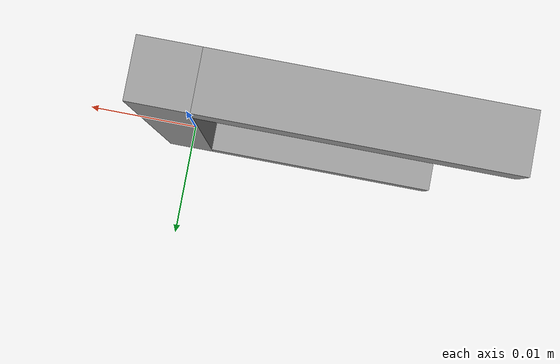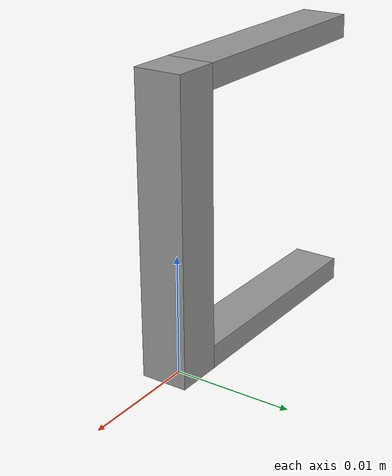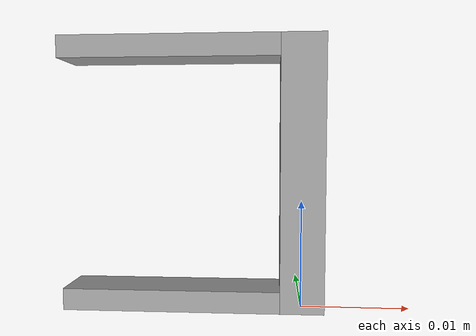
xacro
<?xml version="1.0"?>

<robot xmlns:xacro="http://www.ros.org/wiki/xacro" name="hand">

    <xacro:macro name="gazebo_red_link_color_block" params="link_name">
    <gazebo reference="${link_name}">
    <visual>
      <material>
	    <ambient>1.0 0.0 0.0 1.0</ambient>
	    <diffuse>0.56666695 0.56666695 0.56666695 1.0</diffuse>
	    <specular>0.6000003 0.6000003 0.6000003 1.0</specular>
      </material>
    </visual>
    </gazebo>
    </xacro:macro>

    <!-- EE -->
    <xacro:property name="base_EE_1" value="0.004" />
    <xacro:property name="length_EE_1" value="0.025" />
    <xacro:property name="length_EE_2" value="0.020" />
    <xacro:property name="mass_EE1" value="0.020" />
    <xacro:property name="mass_EE21" value="0.010" />
    <xacro:property name="mass_EE22" value="0.010" />

    <!--EE_part_1-->
    <link name="EE_part_1">
        <xacro:box_inertial_block mass="${mass_EE1}" x="${base_EE_1}" y="${base_EE_1}" z="${length_EE_1}"/>
        <visual>
            <origin xyz="0.0 0.0 ${length_EE_1/2.0}" rpy="0.0 0.0 0.0"/>
            <geometry>
                <box size="${base_EE_1} ${base_EE_1} ${length_EE_1}"/>
            </geometry>
            <material name="Grey"/>
        </visual>

        <collision>
            <origin xyz="0.0 0.0 ${length_EE_1/2.0}" rpy="0.0 0.0 0.0"/>
            <geometry>
                <box size="${base_EE_1} ${base_EE_1} ${length_EE_1}"/>
            </geometry>
        </collision>
    </link>

    <joint name="EE_joint_21" type="fixed">
        <origin xyz="${-base_EE_1/2} 0.0 ${0.0+base_EE_1/4}" rpy="0.0 ${-M_PI/2.0} 0.0"/>
        <parent link="EE_part_1"/>
        <child link="EE_part_21"/>
    </joint>

    <gazebo reference="EE_joint_21">
        <disableFixedJointLumping>true</disableFixedJointLumping>
        <preserveFixedJoint>true</preserveFixedJoint>
    </gazebo>

    <joint name="EE_joint_22" type="fixed">
        <origin xyz="${-base_EE_1/2} 0.0 ${length_EE_1-base_EE_1/4}" rpy="0.0 ${-M_PI/2.0} 0.0"/>
        <parent link="EE_part_1"/>
        <child link="EE_part_22"/>
    </joint>

    <gazebo reference="EE_joint_22">
        <disableFixedJointLumping>true</disableFixedJointLumping>
        <preserveFixedJoint>true</preserveFixedJoint>
    </gazebo>

    <!--EE_part_2-->
    <link name="EE_part_21">
        <xacro:box_inertial_block mass="${mass_EE21}" x="${base_EE_1/2}" y="${base_EE_1}" z="${length_EE_2}"/>
        <visual>
            <origin xyz="0.0 0.0 ${length_EE_2/2.0}" rpy="0.0 0.0 0.0"/>
            <geometry>
                <box size="${base_EE_1/2} ${base_EE_1} ${length_EE_2}"/>
            </geometry>
            <material name="Grey"/>
        </visual>

        <collision>
            <origin xyz="0.0 0.0 ${length_EE_2/2.0}" rpy="0.0 0.0 0.0"/>
            <geometry>
                <box size="${base_EE_1/2} ${base_EE_1} ${length_EE_2}"/>
            </geometry>
        </collision>
    </link>

    <link name="EE_part_22">
        <xacro:box_inertial_block mass="${mass_EE22}" x="${base_EE_1/2}" y="${base_EE_1}" z="${length_EE_2}"/>
        <visual>
            <origin xyz="0.0 0.0 ${length_EE_2/2.0}" rpy="0.0 0.0 0.0"/>
            <geometry>
                <box size="${base_EE_1/2} ${base_EE_1} ${length_EE_2}"/>
            </geometry>
            <material name="Grey"/>
        </visual>

        <collision>
            <origin xyz="0.0 0.0 ${length_EE_2/2.0}" rpy="0.0 0.0 0.0"/>
            <geometry>
                <box size="${base_EE_1/2} ${base_EE_1} ${length_EE_2}"/>
            </geometry>
        </collision>
    </link>

    <xacro:gazebo_red_link_color_block link_name="EE_part_1"/>
    <xacro:gazebo_red_link_color_block link_name="EE_part_21"/>
    <xacro:gazebo_red_link_color_block link_name="EE_part_22"/>

</robot>
